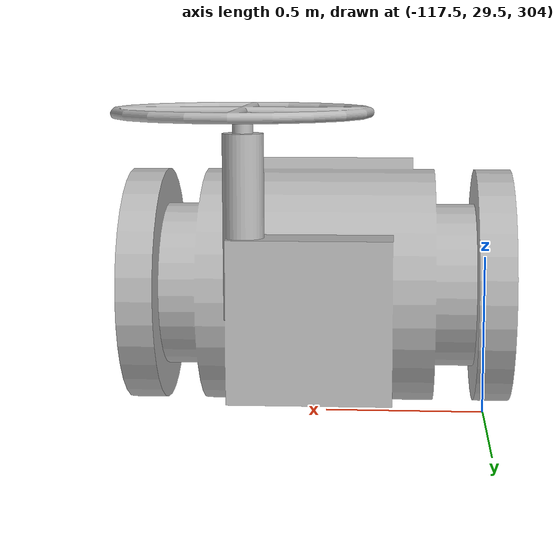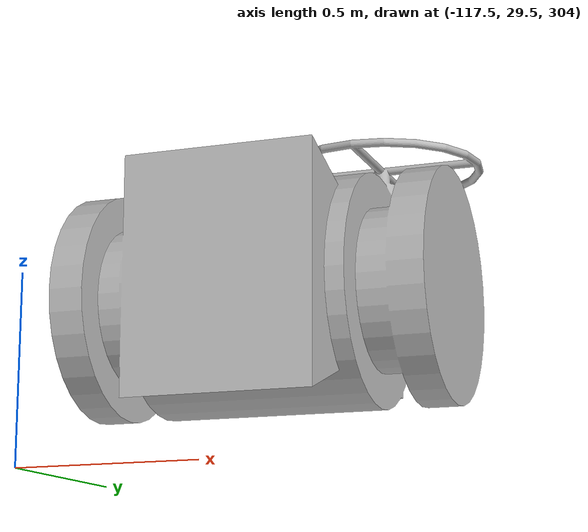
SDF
<?xml version='1.0'?>
<sdf version='1.7'>
    <model name='20-2000VF'>
        <static>true</static>
        <link name='link0'>
            <visual name="visual0">
                <pose>0 0 0 0 0 0</pose>
                <geometry>
                    <mesh>
                        <uri>model://huldra-models/20-2000VF/meshes/20-2000VF.obj</uri>
                    </mesh>
                </geometry>
            </visual>
        </link>
    </model>
</sdf>
